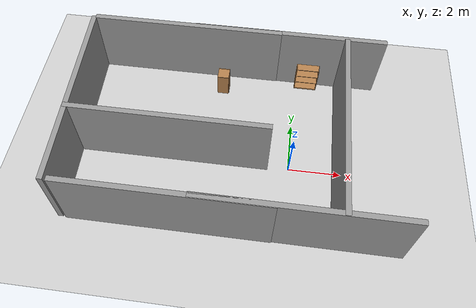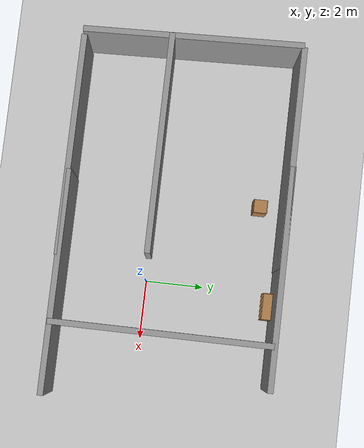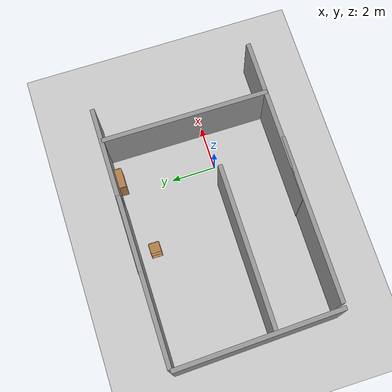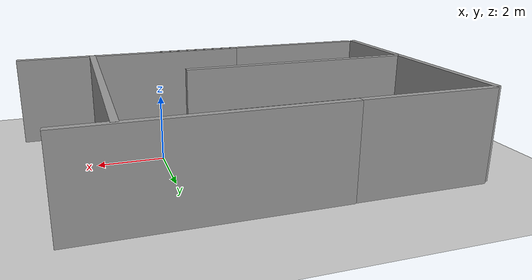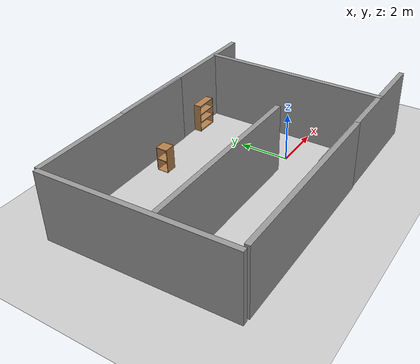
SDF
<sdf version="1.4">
 <world name="default">
  <light name="sun" type="directional">
   <pose>0 0 10 0 -0 0</pose>
   <diffuse>0.8 0.8 0.8 1</diffuse>
   <specular>0.2 0.2 0.2 1</specular>
   <attenuation>
    <range>1000</range>
    <constant>0.9</constant>
    <linear>0.01</linear>
    <quadratic>0.001</quadratic>
   </attenuation>
   <direction>-0.5 0.1 -0.9</direction>
  </light>
  <model name="ground_plane">
   <static>1</static>
   <link name="link">
    <collision name="collision">
     <geometry><plane><normal>0 0 1</normal><size>100 100</size></plane></geometry>
     <surface><friction><ode><mu>100</mu><mu2>50</mu2></ode></friction></surface>
    </collision>
    <visual name="visual">
     <cast_shadows>0</cast_shadows>
     <geometry><plane><normal>0 0 1</normal><size>100 100</size></plane></geometry>
     <material>
      <script><uri>file://media/materials/scripts/gazebo.material</uri><name>Gazebo/Grey</name></script>
     </material>
    </visual>
    <velocity_decay><linear>0</linear><angular>0</angular></velocity_decay>
   </link>
  </model>
  <physics type="ode">
   <max_step_size>0.001</max_step_size>
   <real_time_factor>1</real_time_factor>
   <real_time_update_rate>1000</real_time_update_rate>
   <gravity>0 0 -9.8</gravity>
  </physics>
  <scene><ambient>0.4 0.4 0.4 1</ambient><background>0.7 0.7 0.7 1</background><shadows>1</shadows></scene>
  <spherical_coordinates>
   <surface_model>EARTH_WGS84</surface_model>
   <latitude_deg>0</latitude_deg>
   <longitude_deg>0</longitude_deg>
   <elevation>0</elevation>
   <heading_deg>0</heading_deg>
  </spherical_coordinates>
  <model name="grey_wall_0">
   <static>1</static>
   <link name="link">
    <pose>0 0 1.4 0 -0 0</pose>
    <collision name="collision"><geometry><box><size>7.5 0.2 2.8</size></box></geometry></collision>
    <visual name="visual">
     <cast_shadows>0</cast_shadows>
     <geometry><box><size>7.5 0.2 2.8</size></box></geometry>
     <material>
      <script>
       <uri>model://grey_wall/materials/scripts</uri>
       <uri>model://grey_wall/materials/textures</uri>
       <name>vrc/grey_wall</name>
      </script>
     </material>
    </visual>
    <velocity_decay><linear>0</linear><angular>0</angular></velocity_decay>
   </link>
   <pose>-4.17438 -2.94975 0 0 -0 0</pose>
  </model>
  <model name="grey_wall_1">
   <static>1</static>
   <link name="link">
    <pose>0 0 1.4 0 -0 0</pose>
    <collision name="collision"><geometry><box><size>7.5 0.2 2.8</size></box></geometry></collision>
    <visual name="visual">
     <cast_shadows>0</cast_shadows>
     <geometry><box><size>7.5 0.2 2.8</size></box></geometry>
     <material>
      <script>
       <uri>model://grey_wall/materials/scripts</uri>
       <uri>model://grey_wall/materials/textures</uri>
       <name>vrc/grey_wall</name>
      </script>
     </material>
    </visual>
    <velocity_decay><linear>0</linear><angular>0</angular></velocity_decay>
   </link>
   <pose>-8.24091 0.730795 0 0 0 -1.53854</pose>
  </model>
  <model name="grey_wall_2">
   <static>1</static>
   <link name="link">
    <pose>0 0 1.4 0 -0 0</pose>
    <collision name="collision"><geometry><box><size>7.5 0.2 2.8</size></box></geometry></collision>
    <visual name="visual">
     <cast_shadows>0</cast_shadows>
     <geometry><box><size>7.5 0.2 2.8</size></box></geometry>
     <material>
      <script>
       <uri>model://grey_wall/materials/scripts</uri>
       <uri>model://grey_wall/materials/textures</uri>
       <name>vrc/grey_wall</name>
      </script>
     </material>
    </visual>
    <velocity_decay><linear>0</linear><angular>0</angular></velocity_decay>
   </link>
   <pose>-4.55904 0 0 0 -0 0</pose>
  </model>
  <model name="grey_wall_3">
   <static>1</static>
   <link name="link">
    <pose>0 0 1.4 0 -0 0</pose>
    <collision name="collision"><geometry><box><size>7.5 0.2 2.8</size></box></geometry></collision>
    <visual name="visual">
     <cast_shadows>0</cast_shadows>
     <geometry><box><size>7.5 0.2 2.8</size></box></geometry>
     <material>
      <script>
       <uri>model://grey_wall/materials/scripts</uri>
       <uri>model://grey_wall/materials/textures</uri>
       <name>vrc/grey_wall</name>
      </script>
     </material>
    </visual>
    <velocity_decay><linear>0</linear><angular>0</angular></velocity_decay>
   </link>
   <pose>1.76758 0.74778 0.00212 0 0 -1.57102</pose>
  </model>
  <model name="grey_wall_4">
   <static>1</static>
   <link name="link">
    <pose>0 0 1.4 0 -0 0</pose>
    <collision name="collision"><geometry><box><size>7.5 0.2 2.8</size></box></geometry></collision>
    <visual name="visual">
     <cast_shadows>0</cast_shadows>
     <geometry><box><size>7.5 0.2 2.8</size></box></geometry>
     <material>
      <script>
       <uri>model://grey_wall/materials/scripts</uri>
       <uri>model://grey_wall/materials/textures</uri>
       <name>vrc/grey_wall</name>
      </script>
     </material>
    </visual>
    <velocity_decay><linear>0</linear><angular>0</angular></velocity_decay>
   </link>
   <pose>0.431481 -2.92293 0 0 -0 0</pose>
  </model>
  <model name="grey_wall_5">
   <static>1</static>
   <link name="link">
    <pose>0 0 1.4 0 -0 0</pose>
    <collision name="collision"><geometry><box><size>7.5 0.2 2.8</size></box></geometry></collision>
    <visual name="visual">
     <cast_shadows>0</cast_shadows>
     <geometry><box><size>7.5 0.2 2.8</size></box></geometry>
     <material>
      <script>
       <uri>model://grey_wall/materials/scripts</uri>
       <uri>model://grey_wall/materials/textures</uri>
       <name>vrc/grey_wall</name>
      </script>
     </material>
    </visual>
    <velocity_decay><linear>0</linear><angular>0</angular></velocity_decay>
   </link>
   <pose>-0.468464 4.50676 0 0 -0 0</pose>
  </model>
  <model name="grey_wall_6">
   <static>1</static>
   <link name="link">
    <pose>0 0 1.4 0 -0 0</pose>
    <collision name="collision"><geometry><box><size>7.5 0.2 2.8</size></box></geometry></collision>
    <visual name="visual">
     <cast_shadows>0</cast_shadows>
     <geometry><box><size>7.5 0.2 2.8</size></box></geometry>
     <material>
      <script>
       <uri>model://grey_wall/materials/scripts</uri>
       <uri>model://grey_wall/materials/textures</uri>
       <name>vrc/grey_wall</name>
      </script>
     </material>
    </visual>
    <velocity_decay><linear>0</linear><angular>0</angular></velocity_decay>
   </link>
   <pose>-4.54453 4.48584 0 0 -0 0</pose>
  </model>
  <model name="cabinet">
   <static>1</static>
   <link name="cabinet_bottom_plate">
    <inertial>
     <pose>0 0 -1 0 -0 0</pose>
     <inertia><ixx>2.05</ixx><ixy>0</ixy><ixz>0</ixz><iyy>2.05</iyy><iyz>0</iyz><izz>2.05</izz></inertia>
     <mass>25</mass>
    </inertial>
    <collision name="cabinet_bottom_plate_geom">
     <pose>0 0 0.01 0 -0 0</pose>
     <geometry><box><size>0.45 0.45 0.02</size></box></geometry>
    </collision>
    <visual name="cabinet_bottom_plate_geom_visual">
     <pose>0 0 0.01 0 -0 0</pose>
     <geometry><box><size>0.45 0.45 0.02</size></box></geometry>
     <material>
      <script><uri>file://media/materials/scripts/gazebo.material</uri><name>Gazebo/Wood</name></script>
     </material>
    </visual>
    <collision name="cabinet_bottom_plate_geom_cabinet_back_plate">
     <pose>0.235 0 0.51 0 -0 0</pose>
     <geometry><box><size>0.02 0.45 1.02</size></box></geometry>
    </collision>
    <visual name="cabinet_bottom_plate_geom_cabinet_back_plate_visual">
     <pose>0.235 0 0.51 0 -0 0</pose>
     <geometry><box><size>0.02 0.45 1.02</size></box></geometry>
     <material>
      <script><uri>file://media/materials/scripts/gazebo.material</uri><name>Gazebo/Wood</name></script>
     </material>
    </visual>
    <collision name="cabinet_bottom_plate_geom_cabinet_left_plate">
     <pose>0 0.235 0.51 0 -0 0</pose>
     <geometry><box><size>0.45 0.02 1.02</size></box></geometry>
    </collision>
    <visual name="cabinet_bottom_plate_geom_cabinet_left_plate_visual">
     <pose>0 0.235 0.51 0 -0 0</pose>
     <geometry><box><size>0.45 0.02 1.02</size></box></geometry>
     <material>
      <script><uri>file://media/materials/scripts/gazebo.material</uri><name>Gazebo/Wood</name></script>
     </material>
    </visual>
    <collision name="cabinet_bottom_plate_geom_cabinet_middle_plate">
     <pose>0 0 0.51 0 -0 0</pose>
     <geometry><box><size>0.45 0.45 0.02</size></box></geometry>
    </collision>
    <visual name="cabinet_bottom_plate_geom_cabinet_middle_plate_visual">
     <pose>0 0 0.51 0 -0 0</pose>
     <geometry><box><size>0.45 0.45 0.02</size></box></geometry>
     <material>
      <script><uri>file://media/materials/scripts/gazebo.material</uri><name>Gazebo/Wood</name></script>
     </material>
    </visual>
    <collision name="cabinet_bottom_plate_geom_cabinet_right_plate">
     <pose>0 -0.235 0.51 0 -0 0</pose>
     <geometry><box><size>0.45 0.02 1.02</size></box></geometry>
    </collision>
    <visual name="cabinet_bottom_plate_geom_cabinet_right_plate_visual">
     <pose>0 -0.235 0.51 0 -0 0</pose>
     <geometry><box><size>0.45 0.02 1.02</size></box></geometry>
     <material>
      <script><uri>file://media/materials/scripts/gazebo.material</uri><name>Gazebo/Wood</name></script>
     </material>
    </visual>
    <collision name="cabinet_bottom_plate_geom_cabinet_top_plate">
     <pose>0 0 1.01 0 -0 0</pose>
     <geometry><box><size>0.45 0.45 0.02</size></box></geometry>
    </collision>
    <visual name="cabinet_bottom_plate_geom_cabinet_top_plate_visual">
     <pose>0 0 1.01 0 -0 0</pose>
     <geometry><box><size>0.45 0.45 0.02</size></box></geometry>
     <material>
      <script><uri>file://media/materials/scripts/gazebo.material</uri><name>Gazebo/Wood</name></script>
     </material>
    </visual>
    <velocity_decay><linear>0</linear><angular>0</angular></velocity_decay>
   </link>
   <pose>-2.99612 3.67644 -0.022074 0 -0 0</pose>
  </model>
  <model name="bookshelf">
   <static>1</static>
   <link name="link">
    <inertial><mass>1</mass></inertial>
    <collision name="back">
     <pose>0 0.005 0.6 0 -0 0</pose>
     <geometry><box><size>0.9 0.01 1.2</size></box></geometry>
    </collision>
    <visual name="visual1">
     <pose>0 0.005 0.6 0 -0 0</pose>
     <geometry><box><size>0.9 0.01 1.2</size></box></geometry>
     <material>
      <script><uri>file://media/materials/scripts/gazebo.material</uri><name>Gazebo/Wood</name></script>
     </material>
    </visual>
    <collision name="left_side">
     <pose>0.45 -0.195 0.6 0 -0 0</pose>
     <geometry><box><size>0.02 0.4 1.2</size></box></geometry>
    </collision>
    <visual name="visual2">
     <pose>0.45 -0.195 0.6 0 -0 0</pose>
     <geometry><box><size>0.02 0.4 1.2</size></box></geometry>
     <material>
      <script><uri>file://media/materials/scripts/gazebo.material</uri><name>Gazebo/Wood</name></script>
     </material>
    </visual>
    <collision name="right_side">
     <pose>-0.45 -0.195 0.6 0 -0 0</pose>
     <geometry><box><size>0.02 0.4 1.2</size></box></geometry>
    </collision>
    <visual name="visual3">
     <pose>-0.45 -0.195 0.6 0 -0 0</pose>
     <geometry><box><size>0.02 0.4 1.2</size></box></geometry>
     <material>
      <script><uri>file://media/materials/scripts/gazebo.material</uri><name>Gazebo/Wood</name></script>
     </material>
    </visual>
    <collision name="bottom">
     <pose>0 -0.195 0.03 0 -0 0</pose>
     <geometry><box><size>0.88 0.4 0.06</size></box></geometry>
    </collision>
    <visual name="visual4">
     <pose>0 -0.195 0.03 0 -0 0</pose>
     <geometry><box><size>0.88 0.4 0.06</size></box></geometry>
     <material>
      <script><uri>file://media/materials/scripts/gazebo.material</uri><name>Gazebo/Wood</name></script>
     </material>
    </visual>
    <collision name="top">
     <pose>0 -0.195 1.19 0 -0 0</pose>
     <geometry><box><size>0.88 0.4 0.02</size></box></geometry>
    </collision>
    <visual name="visual5">
     <pose>0 -0.195 1.19 0 -0 0</pose>
     <geometry><box><size>0.88 0.4 0.02</size></box></geometry>
     <material>
      <script><uri>file://media/materials/scripts/gazebo.material</uri><name>Gazebo/Wood</name></script>
     </material>
    </visual>
    <collision name="low_shelf">
     <pose>0 -0.195 0.43 0 -0 0</pose>
     <geometry><box><size>0.88 0.4 0.02</size></box></geometry>
    </collision>
    <visual name="visual6">
     <pose>0 -0.195 0.43 0 -0 0</pose>
     <geometry><box><size>0.88 0.4 0.02</size></box></geometry>
     <material>
      <script><uri>file://media/materials/scripts/gazebo.material</uri><name>Gazebo/Wood</name></script>
     </material>
    </visual>
    <collision name="high_shelf">
     <pose>0 -0.195 0.8 0 -0 0</pose>
     <geometry><box><size>0.88 0.4 0.02</size></box></geometry>
    </collision>
    <visual name="visual7">
     <pose>0 -0.195 0.8 0 -0 0</pose>
     <geometry><box><size>0.88 0.4 0.02</size></box></geometry>
     <material>
      <script><uri>file://media/materials/scripts/gazebo.material</uri><name>Gazebo/Wood</name></script>
     </material>
    </visual>
    <velocity_decay><linear>0</linear><angular>0</angular></velocity_decay>
   </link>
   <pose>0.450204 4.48153 0 0 -0 0</pose>
  </model>
 </world>
</sdf>
